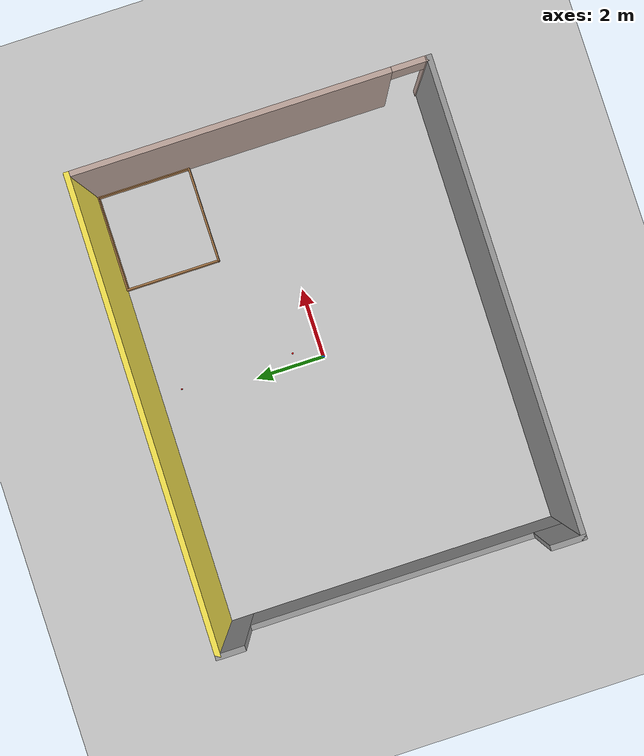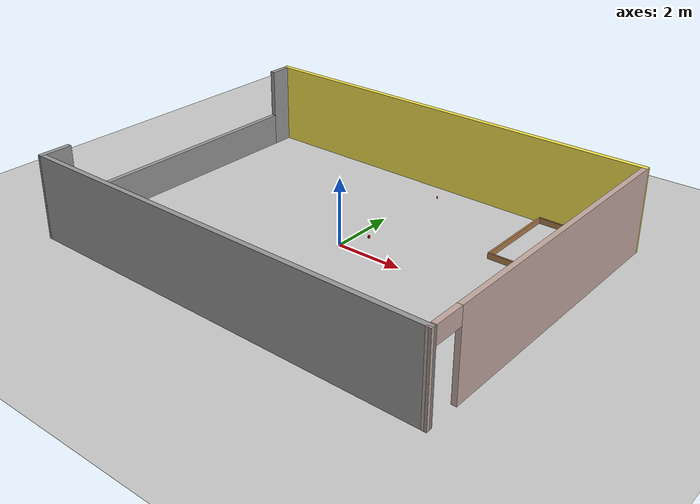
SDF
<sdf version="1.6">
 <world name="default">
  <model name="ground_plane">
   <static>1</static>
   <link name="link">
    <collision name="collision">
     <geometry><plane><normal>0 0 1</normal><size>100 100</size></plane></geometry>
     <surface><friction><ode><mu>100</mu><mu2>50</mu2></ode></friction></surface>
    </collision>
    <visual name="visual">
     <cast_shadows>0</cast_shadows>
     <geometry><plane><normal>0 0 1</normal><size>100 100</size></plane></geometry>
     <material>
      <script><uri>file://media/materials/scripts/gazebo.material</uri><name>Gazebo/Grey</name></script>
     </material>
    </visual>
   </link>
  </model>
  <light name="sun" type="directional">
   <pose>0 0 10 0 -0 0</pose>
   <diffuse>0.8 0.8 0.8 1</diffuse>
   <specular>0.2 0.2 0.2 1</specular>
   <attenuation>
    <range>1000</range>
    <constant>0.9</constant>
    <linear>0.01</linear>
    <quadratic>0.001</quadratic>
   </attenuation>
   <direction>-0.5 0.1 -0.9</direction>
  </light>
  <gravity>0 0 -9.8</gravity>
  <magnetic_field>6e-06 2.3e-05 -4.2e-05</magnetic_field>
  <atmosphere type="adiabatic"/>
  <physics name="default_physics" default="0" type="ode">
   <max_step_size>0.001</max_step_size>
   <real_time_factor>1</real_time_factor>
   <real_time_update_rate>1000</real_time_update_rate>
  </physics>
  <scene><ambient>0.4 0.4 0.4 1</ambient><background>0.7 0.7 0.7 1</background><shadows>1</shadows></scene>
  <audio><device>default</device></audio>
  <spherical_coordinates>
   <surface_model>EARTH_WGS84</surface_model>
   <latitude_deg>0</latitude_deg>
   <longitude_deg>0</longitude_deg>
   <elevation>0</elevation>
   <heading_deg>0</heading_deg>
  </spherical_coordinates>
  <model name="lab404">
   <pose>0 -0.00917 0 0 -0 0</pose>
   <link name="Wall_0">
    <collision name="Wall_0_Collision">
     <geometry><box><size>12.8011 0.15 2.5</size></box></geometry>
     <pose>0 0 1.25 0 -0 0</pose>
    </collision>
    <visual name="Wall_0_Visual">
     <pose>0 0 1.25 0 -0 0</pose>
     <geometry><box><size>12.8011 0.15 2.5</size></box></geometry>
     <material>
      <script><uri>file://media/materials/scripts/gazebo.material</uri><name>Gazebo/Grey</name></script>
      <ambient>1 1 1 1</ambient>
     </material>
     <meta><layer>0</layer></meta>
    </visual>
    <pose>0 -4.8 0 0 -0 -0.007114</pose>
   </link>
   <link name="Wall_1">
    <pose>6.3255 -0.045 0 0 -0 1.5708</pose>
    <visual name="Wall_1_Visual_0">
     <pose>-4.78382 0 1.25 0 -0 0</pose>
     <geometry><box><size>0.182364 0.15 2.5</size></box></geometry>
     <material>
      <script><uri>file://media/materials/scripts/gazebo.material</uri><name>Gazebo/Grey</name></script>
      <ambient>0.760784 0.662745 0.627451 1</ambient>
     </material>
     <meta><layer>0</layer></meta>
    </visual>
    <collision name="Wall_1_Collision_0">
     <geometry><box><size>0.182364 0.15 2.5</size></box></geometry>
     <pose>-4.78382 0 1.25 0 -0 0</pose>
    </collision>
    <visual name="Wall_1_Visual_1">
     <pose>0.541182 0 1.25 0 -0 0</pose>
     <geometry><box><size>8.66764 0.15 2.5</size></box></geometry>
     <material>
      <script><uri>file://media/materials/scripts/gazebo.material</uri><name>Gazebo/Grey</name></script>
      <ambient>0.760784 0.662745 0.627451 1</ambient>
     </material>
     <meta><layer>0</layer></meta>
    </visual>
    <collision name="Wall_1_Collision_1">
     <geometry><box><size>8.66764 0.15 2.5</size></box></geometry>
     <pose>0.541182 0 1.25 0 -0 0</pose>
    </collision>
    <visual name="Wall_1_Visual_2">
     <pose>-4.24264 0 2.25 0 -0 0</pose>
     <geometry><box><size>0.9 0.15 0.5</size></box></geometry>
     <material>
      <script><uri>file://media/materials/scripts/gazebo.material</uri><name>Gazebo/Grey</name></script>
      <ambient>0.760784 0.662745 0.627451 1</ambient>
     </material>
     <meta><layer>0</layer></meta>
    </visual>
    <collision name="Wall_1_Collision_2">
     <geometry><box><size>0.9 0.15 0.5</size></box></geometry>
     <pose>-4.24264 0 2.25 0 -0 0</pose>
    </collision>
   </link>
   <link name="Wall_2">
    <collision name="Wall_2_Collision">
     <geometry><box><size>12.8011 0.15 2.5</size></box></geometry>
     <pose>0 0 1.25 0 -0 0</pose>
    </collision>
    <visual name="Wall_2_Visual">
     <pose>0 0 1.25 0 -0 0</pose>
     <geometry><box><size>12.8011 0.15 2.5</size></box></geometry>
     <material>
      <script><uri>file://media/materials/scripts/gazebo.material</uri><name>Gazebo/Grey</name></script>
      <ambient>0.988235 0.913725 0.309804 1</ambient>
     </material>
     <meta><layer>0</layer></meta>
    </visual>
    <pose>0 4.8 0 0 -0 3.13448</pose>
   </link>
   <link name="Wall_3">
    <pose>-6.3255 0.045 0 0 -0 -1.5708</pose>
    <visual name="Wall_3_Visual_0">
     <pose>-4.47804 0 1.25 0 -0 0</pose>
     <geometry><box><size>0.793928 0.15 2.5</size></box></geometry>
     <material>
      <script><uri>file://media/materials/scripts/gazebo.material</uri><name>Gazebo/Grey</name></script>
      <ambient>1 1 1 1</ambient>
     </material>
     <meta><layer>0</layer></meta>
    </visual>
    <collision name="Wall_3_Collision_0">
     <geometry><box><size>0.793928 0.15 2.5</size></box></geometry>
     <pose>-4.47804 0 1.25 0 -0 0</pose>
    </collision>
    <visual name="Wall_3_Visual_1">
     <pose>0.396964 0 0.5 0 -0 0</pose>
     <geometry><box><size>8.95607 0.15 1</size></box></geometry>
     <material>
      <script><uri>file://media/materials/scripts/gazebo.material</uri><name>Gazebo/Grey</name></script>
      <ambient>1 1 1 1</ambient>
     </material>
     <meta><layer>0</layer></meta>
    </visual>
    <collision name="Wall_3_Collision_1">
     <geometry><box><size>8.95607 0.15 1</size></box></geometry>
     <pose>0.396964 0 0.5 0 -0 0</pose>
    </collision>
    <visual name="Wall_3_Visual_2">
     <pose>4.39696 0 1.75 0 -0 0</pose>
     <geometry><box><size>0.956072 0.15 1.5</size></box></geometry>
     <material>
      <script><uri>file://media/materials/scripts/gazebo.material</uri><name>Gazebo/Grey</name></script>
      <ambient>1 1 1 1</ambient>
     </material>
     <meta><layer>0</layer></meta>
    </visual>
    <collision name="Wall_3_Collision_2">
     <geometry><box><size>0.956072 0.15 1.5</size></box></geometry>
     <pose>4.39696 0 1.75 0 -0 0</pose>
    </collision>
   </link>
   <static>1</static>
  </model>
  <model name="turtlebot3_square">
   <link name="Wall_0">
    <pose>0.557021 1.925 0 0 -0 0</pose>
    <inertial>
     <inertia><ixx>0</ixx><ixy>0</ixy><ixz>0</ixz><iyy>0</iyy><iyz>0</iyz><izz>0</izz></inertia>
     <mass>0</mass>
    </inertial>
    <visual name="Wall_0_Visual">
     <pose>0 0 0.25 0 -0 0</pose>
     <geometry><box><size>2.7317 0.05 0.2</size></box></geometry>
     <material>
      <script><uri>file://media/materials/scripts/gazebo.material</uri><name>Gazebo/Wood</name></script>
      <ambient>1 1 1 1</ambient>
     </material>
    </visual>
    <collision name="Wall_0_Collision">
     <pose>0 0 0.25 0 -0 0</pose>
     <geometry><box><size>2.7317 0.05 0.2</size></box></geometry>
     <surface>
      <friction>
       <ode><mu>1</mu><mu2>1</mu2><fdir1>0 0 0</fdir1><slip1>0</slip1><slip2>0</slip2></ode>
       <torsional>
        <coefficient>1</coefficient>
        <patch_radius>0</patch_radius>
        <surface_radius>0</surface_radius>
        <use_patch_radius>1</use_patch_radius>
        <ode><slip>0</slip></ode>
       </torsional>
      </friction>
      <bounce><restitution_coefficient>0</restitution_coefficient><threshold>1e+06</threshold></bounce>
      <contact>
       <collide_without_contact>0</collide_without_contact>
       <collide_without_contact_bitmask>1</collide_without_contact_bitmask>
       <collide_bitmask>1</collide_bitmask>
       <ode>
        <soft_cfm>0</soft_cfm>
        <soft_erp>0.2</soft_erp>
        <kp>1e+13</kp>
        <kd>1</kd>
        <max_vel>0.01</max_vel>
        <min_depth>0</min_depth>
       </ode>
       <bullet>
        <split_impulse>1</split_impulse>
        <split_impulse_penetration_threshold>-0.01</split_impulse_penetration_threshold>
        <soft_cfm>0</soft_cfm>
        <soft_erp>0.2</soft_erp>
        <kp>1e+13</kp>
        <kd>1</kd>
       </bullet>
      </contact>
     </surface>
    </collision>
   </link>
   <link name="Wall_2">
    <pose>-0.819251 0.606379 0 0 0 -1.5708</pose>
    <inertial>
     <inertia><ixx>0</ixx><ixy>0</ixy><ixz>0</ixz><iyy>0</iyy><iyz>0</iyz><izz>0</izz></inertia>
     <mass>0</mass>
    </inertial>
    <visual name="Wall_2_Visual">
     <pose>0 0 0.25 0 -0 0</pose>
     <geometry><box><size>2.73482 0.05 0.2</size></box></geometry>
     <material>
      <script><uri>file://media/materials/scripts/gazebo.material</uri><name>Gazebo/Wood</name></script>
      <ambient>1 1 1 1</ambient>
     </material>
    </visual>
    <collision name="Wall_2_Collision">
     <pose>0 0 0.25 0 -0 0</pose>
     <geometry><box><size>2.73482 0.05 0.2</size></box></geometry>
     <surface>
      <friction>
       <ode><mu>1</mu><mu2>1</mu2><fdir1>0 0 0</fdir1><slip1>0</slip1><slip2>0</slip2></ode>
       <torsional>
        <coefficient>1</coefficient>
        <patch_radius>0</patch_radius>
        <surface_radius>0</surface_radius>
        <use_patch_radius>1</use_patch_radius>
        <ode><slip>0</slip></ode>
       </torsional>
      </friction>
      <bounce><restitution_coefficient>0</restitution_coefficient><threshold>1e+06</threshold></bounce>
      <contact>
       <collide_without_contact>0</collide_without_contact>
       <collide_without_contact_bitmask>1</collide_without_contact_bitmask>
       <collide_bitmask>1</collide_bitmask>
       <ode>
        <soft_cfm>0</soft_cfm>
        <soft_erp>0.2</soft_erp>
        <kp>1e+13</kp>
        <kd>1</kd>
        <max_vel>0.01</max_vel>
        <min_depth>0</min_depth>
       </ode>
       <bullet>
        <split_impulse>1</split_impulse>
        <split_impulse_penetration_threshold>-0.01</split_impulse_penetration_threshold>
        <soft_cfm>0</soft_cfm>
        <soft_erp>0.2</soft_erp>
        <kp>1e+13</kp>
        <kd>1</kd>
       </bullet>
      </contact>
     </surface>
    </collision>
   </link>
   <link name="Wall_3">
    <pose>0.558829 -0.759815 0 0 -0 0</pose>
    <inertial>
     <inertia><ixx>0</ixx><ixy>0</ixy><ixz>0</ixz><iyy>0</iyy><iyz>0</iyz><izz>0</izz></inertia>
     <mass>0</mass>
    </inertial>
    <visual name="Wall_3_Visual">
     <pose>0 0 0.25 0 -0 0</pose>
     <geometry><box><size>2.80543 0.05 0.2</size></box></geometry>
     <material>
      <script><uri>file://media/materials/scripts/gazebo.material</uri><name>Gazebo/Wood</name></script>
      <ambient>1 1 1 1</ambient>
     </material>
    </visual>
    <collision name="Wall_3_Collision">
     <pose>0 0 0.25 0 -0 0</pose>
     <geometry><box><size>2.80543 0.05 0.2</size></box></geometry>
     <surface>
      <friction>
       <ode><mu>1</mu><mu2>1</mu2><fdir1>0 0 0</fdir1><slip1>0</slip1><slip2>0</slip2></ode>
       <torsional>
        <coefficient>1</coefficient>
        <patch_radius>0</patch_radius>
        <surface_radius>0</surface_radius>
        <use_patch_radius>1</use_patch_radius>
        <ode><slip>0</slip></ode>
       </torsional>
      </friction>
      <bounce><restitution_coefficient>0</restitution_coefficient><threshold>1e+06</threshold></bounce>
      <contact>
       <collide_without_contact>0</collide_without_contact>
       <collide_without_contact_bitmask>1</collide_without_contact_bitmask>
       <collide_bitmask>1</collide_bitmask>
       <ode>
        <soft_cfm>0</soft_cfm>
        <soft_erp>0.2</soft_erp>
        <kp>1e+13</kp>
        <kd>1</kd>
        <max_vel>0.01</max_vel>
        <min_depth>0</min_depth>
       </ode>
       <bullet>
        <split_impulse>1</split_impulse>
        <split_impulse_penetration_threshold>-0.01</split_impulse_penetration_threshold>
        <soft_cfm>0</soft_cfm>
        <soft_erp>0.2</soft_erp>
        <kp>1e+13</kp>
        <kd>1</kd>
       </bullet>
      </contact>
     </surface>
    </collision>
   </link>
   <link name="Wall_4">
    <pose>1.925 0.603331 0 0 -0 1.5708</pose>
    <inertial>
     <inertia><ixx>0</ixx><ixy>0</ixy><ixz>0</ixz><iyy>0</iyy><iyz>0</iyz><izz>0</izz></inertia>
     <mass>0</mass>
    </inertial>
    <visual name="Wall_4_Visual">
     <pose>0 0 0.25 0 -0 0</pose>
     <geometry><box><size>2.71507 0.05 0.2</size></box></geometry>
     <material>
      <script><uri>file://media/materials/scripts/gazebo.material</uri><name>Gazebo/Wood</name></script>
      <ambient>1 1 1 1</ambient>
     </material>
    </visual>
    <collision name="Wall_4_Collision">
     <pose>0 0 0.25 0 -0 0</pose>
     <geometry><box><size>2.71507 0.05 0.2</size></box></geometry>
     <surface>
      <friction>
       <ode><mu>1</mu><mu2>1</mu2><fdir1>0 0 0</fdir1><slip1>0</slip1><slip2>0</slip2></ode>
       <torsional>
        <coefficient>1</coefficient>
        <patch_radius>0</patch_radius>
        <surface_radius>0</surface_radius>
        <use_patch_radius>1</use_patch_radius>
        <ode><slip>0</slip></ode>
       </torsional>
      </friction>
      <bounce><restitution_coefficient>0</restitution_coefficient><threshold>1e+06</threshold></bounce>
      <contact>
       <collide_without_contact>0</collide_without_contact>
       <collide_without_contact_bitmask>1</collide_without_contact_bitmask>
       <collide_bitmask>1</collide_bitmask>
       <ode>
        <soft_cfm>0</soft_cfm>
        <soft_erp>0.2</soft_erp>
        <kp>1e+13</kp>
        <kd>1</kd>
        <max_vel>0.01</max_vel>
        <min_depth>0</min_depth>
       </ode>
       <bullet>
        <split_impulse>1</split_impulse>
        <split_impulse_penetration_threshold>-0.01</split_impulse_penetration_threshold>
        <soft_cfm>0</soft_cfm>
        <soft_erp>0.2</soft_erp>
        <kp>1e+13</kp>
        <kd>1</kd>
       </bullet>
      </contact>
     </surface>
    </collision>
   </link>
   <static>1</static>
   <pose>4.32445 2.74229 -0.18993 0 -0 0</pose>
  </model>
  <model name="wood_cube_5cm_clone">
   <link name="link">
    <pose>0 0 0.025 0 -0 0</pose>
    <inertial>
     <mass>0.02</mass>
     <inertia>
      <ixx>2.35417e-05</ixx>
      <ixy>0</ixy>
      <ixz>0</ixz>
      <iyy>2.35417e-05</iyy>
      <iyz>0</iyz>
      <izz>2.35417e-05</izz>
     </inertia>
    </inertial>
    <collision name="collision">
     <geometry><box><size>0.04 0.04 0.08</size></box></geometry>
     <surface>
      <contact>
       <poissons_ratio>0.347</poissons_ratio>
       <elastic_modulus>8.8e+09</elastic_modulus>
       <ode><kp>100000</kp><kd>1</kd><max_vel>1</max_vel><min_depth>0.001</min_depth></ode>
      </contact>
      <friction>
       <torsional>
        <coefficient>1</coefficient>
        <use_patch_radius>0</use_patch_radius>
        <surface_radius>0.05</surface_radius>
       </torsional>
      </friction>
     </surface>
    </collision>
    <visual name="visual">
     <geometry><box><size>0.04 0.04 0.08</size></box></geometry>
     <material>
      <ambient>1 0 0 1</ambient>
      <diffuse>1 0 0 1</diffuse>
      <script><uri>file://media/materials/scripts/gazebo.material</uri><name>Gazebo/Grey</name></script>
     </material>
    </visual>
   </link>
   <pose>0.369287 0.812866 0.013999 0 -0 0</pose>
  </model>
  <model name="unit_cylinder">
   <pose>0.374962 4.09719 0.032925 0 -5e-06 -2.3e-05</pose>
   <link name="link">
    <inertial>
     <mass>0.1</mass>
     <inertia><ixx>0.145833</ixx><ixy>0</ixy><ixz>0</ixz><iyy>0.145833</iyy><iyz>0</iyz><izz>0.125</izz></inertia>
    </inertial>
    <collision name="collision">
     <geometry><cylinder><radius>0.0183019</radius><length>0.0658497</length></cylinder></geometry>
    </collision>
    <visual name="visual">
     <geometry><cylinder><radius>0.0183019</radius><length>0.0658497</length></cylinder></geometry>
     <material>
      <ambient>1 0 0 1</ambient>
      <diffuse>1 0 0 1</diffuse>
      <script><name>Gazebo/Grey</name><uri>file://media/materials/scripts/gazebo.material</uri></script>
     </material>
    </visual>
   </link>
  </model>
 </world>
</sdf>
